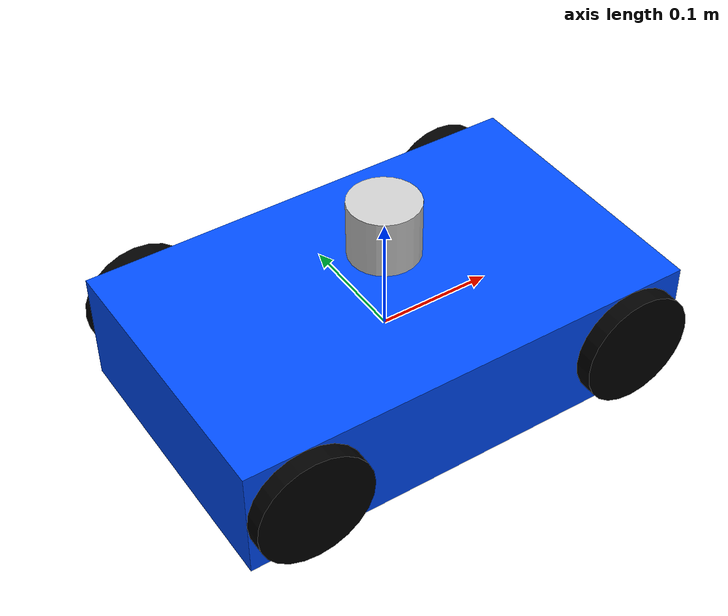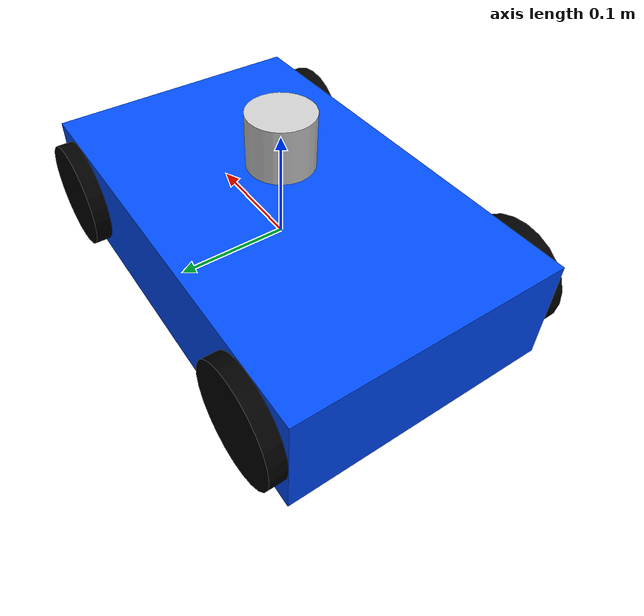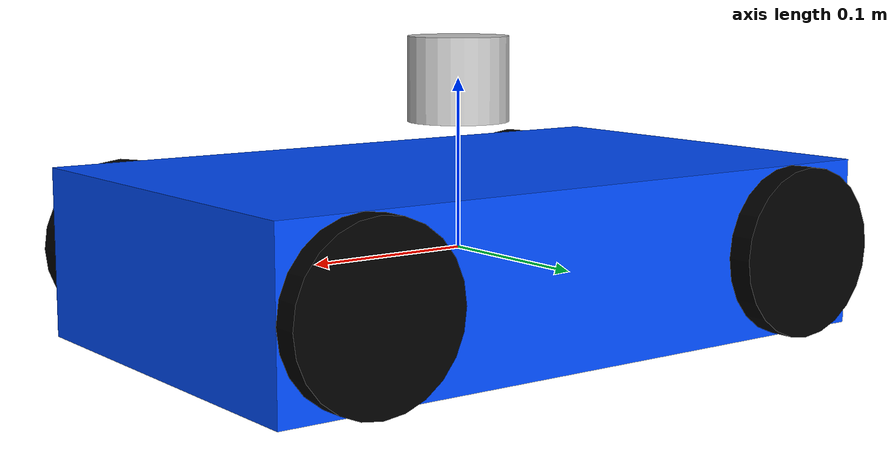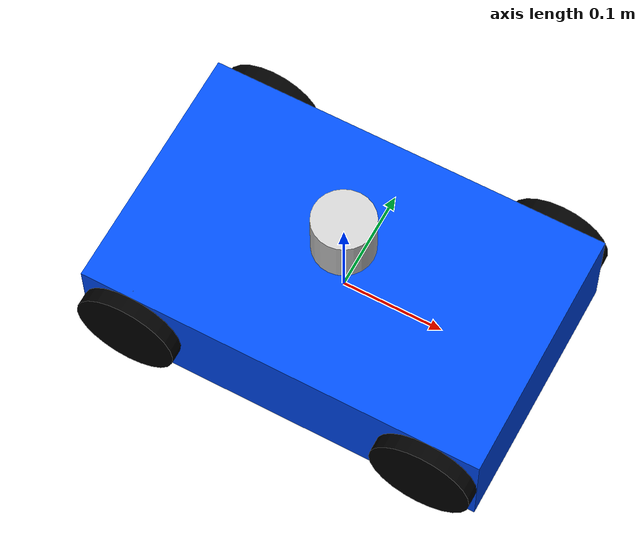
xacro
<?xml version="1.0"?>
<robot name="eclipse_ackermann_bot" xmlns:xacro="http://www.ros.org/wiki/xacro">

  <!-- ===== PARAMETERS ===== -->
  <xacro:property name="wheelbase" value="0.3"/>
  <xacro:property name="track_width" value="0.25"/>
  <xacro:property name="wheel_radius" value="0.05"/>
  <xacro:property name="wheel_thickness" value="0.03"/>
  <xacro:property name="max_steer_angle" value="0.6"/>

  <!-- ===== BASE LINK ===== -->
  <link name="base_link">
    <visual>
      <geometry><box size="0.4 0.25 0.1"/></geometry>
      <material name="blue"><color rgba="0.0 0.3 1.0 1.0"/></material>
    </visual>
    <collision>
      <geometry><box size="0.4 0.25 0.1"/></geometry>
    </collision>
    <inertial>
      <mass value="5.0"/>
      <inertia ixx="0.05" iyy="0.05" izz="0.05" ixy="0" ixz="0" iyz="0"/>
    </inertial>
  </link>

  <!-- ===== REAR WHEELS (Fixed, driven) ===== -->
  <xacro:macro name="rear_wheel" params="name y_offset">
    <link name="${name}">
      <visual>
        <geometry><cylinder length="${wheel_thickness}" radius="${wheel_radius}"/></geometry>
        <material name="black"><color rgba="0 0 0 1"/></material>
        <origin rpy="1.5708 0 0" xyz="0 0 0"/>
      </visual>
      <collision>
        <geometry><cylinder length="${wheel_thickness}" radius="${wheel_radius}"/></geometry>
        <origin rpy="1.5708 0 0" xyz="0 0 0"/>
      </collision>
      <inertial>
        <mass value="0.5"/>
        <inertia ixx="0.001" iyy="0.001" izz="0.0005" ixy="0" ixz="0" iyz="0"/>
      </inertial>
    </link>

    <joint name="${name}_joint" type="continuous">
      <parent link="base_link"/>
      <child link="${name}"/>
      <origin xyz="${-wheelbase/2} ${y_offset} 0" rpy="0 0 0"/>
      <axis xyz="0 1 0"/>
    </joint>

    <gazebo reference="${name}">
      <mu1>1.2</mu1>
      <mu2>1.2</mu2>
      <kp>1000000.0</kp>
      <kd>100.0</kd>
      <minDepth>0.001</minDepth>
      <maxVel>1.0</maxVel>
    </gazebo>
  </xacro:macro>

  <xacro:rear_wheel name="rear_left_wheel" y_offset="${track_width/2}"/>
  <xacro:rear_wheel name="rear_right_wheel" y_offset="${-track_width/2}"/>

  <!-- ===== FRONT WHEELS (Steerable) ===== -->
  <xacro:macro name="front_wheel" params="name y_offset">
    <!-- Steering link -->
    <link name="${name}_steering_link">
      <inertial>
        <mass value="0.01"/>
        <inertia ixx="0.00001" iyy="0.00001" izz="0.00001" ixy="0" ixz="0" iyz="0"/>
      </inertial>
    </link>

    <!-- Steering joint -->
    <joint name="${name}_steering_joint" type="revolute">
      <parent link="base_link"/>
      <child link="${name}_steering_link"/>
      <origin xyz="${wheelbase/2} ${y_offset} 0" rpy="0 0 0"/>
      <axis xyz="0 0 1"/>
      <limit lower="${-max_steer_angle}" upper="${max_steer_angle}" effort="100" velocity="10"/>
    </joint>

    <!-- Wheel link -->
    <link name="${name}">
      <visual>
        <geometry><cylinder length="${wheel_thickness}" radius="${wheel_radius}"/></geometry>
        <material name="black"><color rgba="0 0 0 1"/></material>
        <origin rpy="1.5708 0 0" xyz="0 0 0"/>
      </visual>
      <collision>
        <geometry><cylinder length="${wheel_thickness}" radius="${wheel_radius}"/></geometry>
        <origin rpy="1.5708 0 0" xyz="0 0 0"/>
      </collision>
      <inertial>
        <mass value="0.5"/>
        <inertia ixx="0.001" iyy="0.001" izz="0.0005" ixy="0" ixz="0" iyz="0"/>
      </inertial>
    </link>

    <!-- Wheel joint -->
    <joint name="${name}_joint" type="continuous">
      <parent link="${name}_steering_link"/>
      <child link="${name}"/>
      <origin xyz="0 0 0" rpy="0 0 0"/>
      <axis xyz="0 1 0"/>
    </joint>

    <gazebo reference="${name}">
      <mu1>1.2</mu1>
      <mu2>1.2</mu2>
      <kp>1000000.0</kp>
      <kd>100.0</kd>
      <minDepth>0.001</minDepth>
      <maxVel>1.0</maxVel>
    </gazebo>
  </xacro:macro>

  <xacro:front_wheel name="front_left_wheel" y_offset="${track_width/2}"/>
  <xacro:front_wheel name="front_right_wheel" y_offset="${-track_width/2}"/>

  <!-- ===== LIDAR LINK ===== -->
  <link name="lidar_link">
    <visual>
      <geometry><cylinder length="0.05" radius="0.03"/></geometry>
      <material name="gray"><color rgba="0.8 0.8 0.8 1.0"/></material>
    </visual>
    <collision>
      <geometry><cylinder length="0.05" radius="0.03"/></geometry>
    </collision>
    <inertial>
      <mass value="0.05"/>
      <inertia ixx="0.0001" iyy="0.0001" izz="0.0001" ixy="0" ixz="0" iyz="0"/>
    </inertial>
  </link>

  <joint name="lidar_joint" type="fixed">
    <parent link="base_link"/>
    <child link="lidar_link"/>
    <origin xyz="0 0 0.1" rpy="0 0 0"/>
  </joint>

  <!-- ===== IMU LINK ===== -->
  <link name="imu_link">
    <inertial>
      <mass value="0.01"/>
      <inertia ixx="0.00001" iyy="0.00001" izz="0.00001" ixy="0" ixz="0" iyz="0"/>
    </inertial>
  </link>

  <joint name="imu_joint" type="fixed">
    <parent link="base_link"/>
    <child link="imu_link"/>
    <origin xyz="0 0 0.05" rpy="0 0 0"/>
  </joint>

  <!-- ===== JOINT STATE PUBLISHER ===== -->
  <gazebo>
    <plugin filename="gz-sim-joint-state-publisher-system" name="gz::sim::systems::JointStatePublisher">
      <topic>joint_states</topic>
    </plugin>
  </gazebo>

  <!-- ===== VELOCITY CONTROL FOR REAR WHEELS ===== -->
  <gazebo>
    <plugin filename="gz-sim-joint-controller-system" name="gz::sim::systems::JointController">
      <joint_name>rear_left_wheel_joint</joint_name>
      <topic>rear_left_wheel/cmd_vel</topic>
      <p_gain>1.0</p_gain>
      <i_gain>0.1</i_gain>
      <d_gain>0.01</d_gain>
      <i_max>1.0</i_max>
      <i_min>-1.0</i_min>
      <cmd_max>100.0</cmd_max>
      <cmd_min>-100.0</cmd_min>
    </plugin>
  </gazebo>

  <gazebo>
    <plugin filename="gz-sim-joint-controller-system" name="gz::sim::systems::JointController">
      <joint_name>rear_right_wheel_joint</joint_name>
      <topic>rear_right_wheel/cmd_vel</topic>
      <p_gain>1.0</p_gain>
      <i_gain>0.1</i_gain>
      <d_gain>0.01</d_gain>
      <i_max>1.0</i_max>
      <i_min>-1.0</i_min>
      <cmd_max>100.0</cmd_max>
      <cmd_min>-100.0</cmd_min>
    </plugin>
  </gazebo>

  <!-- ===== POSITION CONTROL FOR STEERING ===== -->
  <gazebo>
    <plugin filename="gz-sim-joint-position-controller-system" name="gz::sim::systems::JointPositionController">
      <joint_name>front_left_wheel_steering_joint</joint_name>
      <topic>front_left_steering/cmd_pos</topic>
      <p_gain>10.0</p_gain>
      <i_gain>0.1</i_gain>
      <d_gain>0.5</d_gain>
      <i_max>1.0</i_max>
      <i_min>-1.0</i_min>
      <cmd_max>100.0</cmd_max>
      <cmd_min>-100.0</cmd_min>
    </plugin>
  </gazebo>

  <gazebo>
    <plugin filename="gz-sim-joint-position-controller-system" name="gz::sim::systems::JointPositionController">
      <joint_name>front_right_wheel_steering_joint</joint_name>
      <topic>front_right_steering/cmd_pos</topic>
      <p_gain>10.0</p_gain>
      <i_gain>0.1</i_gain>
      <d_gain>0.5</d_gain>
      <i_max>1.0</i_max>
      <i_min>-1.0</i_min>
      <cmd_max>100.0</cmd_max>
      <cmd_min>-100.0</cmd_min>
    </plugin>
  </gazebo>

  <!-- ===== POSE PUBLISHER (for odometry) ===== -->
  <gazebo>
    <plugin filename="libignition-gazebo-pose-publisher-system.so" name="ignition::gazebo::systems::PosePublisher">
      <publish_link_pose>true</publish_link_pose>
      <publish_sensor_pose>false</publish_sensor_pose>
      <publish_collision_pose>false</publish_collision_pose>
      <publish_visual_pose>false</publish_visual_pose>
      <publish_nested_model_pose>false</publish_nested_model_pose>
      <update_frequency>50</update_frequency>
    </plugin>
  </gazebo>

  <!-- ===== LIDAR SENSOR ===== -->
  <gazebo reference="lidar_link">
    <sensor name="lidar_sensor" type="gpu_lidar">
      <always_on>true</always_on>
      <update_rate>10</update_rate>
      <visualize>true</visualize>
      <pose>0 0 0 0 0 0</pose>
      <topic>scan</topic>
      <ray>
        <scan>
          <horizontal>
            <samples>720</samples>
            <resolution>1</resolution>
            <min_angle>-1.5708</min_angle>
            <max_angle>1.5708</max_angle>
          </horizontal>
        </scan>
        <range>
          <min>0.12</min>
          <max>5.0</max>
          <resolution>0.01</resolution>
        </range>
        <noise>
          <type>gaussian</type>
          <stddev>0.01</stddev>
        </noise>
      </ray>
      <plugin name="gz::sim::systems::Sensors" filename="gz-sim-sensors-system"/>
    </sensor>
  </gazebo>

  <!-- ===== IMU SENSOR ===== -->
  <gazebo reference="imu_link">
    <sensor name="imu_sensor" type="imu">
      <always_on>true</always_on>
      <update_rate>100</update_rate>
      <topic>imu</topic>
      <imu>
        <angular_velocity>
          <x>
            <noise type="gaussian">
              <mean>0.0</mean>
              <stddev>0.01</stddev>
            </noise>
          </x>
          <y>
            <noise type="gaussian">
              <mean>0.0</mean>
              <stddev>0.01</stddev>
            </noise>
          </y>
          <z>
            <noise type="gaussian">
              <mean>0.0</mean>
              <stddev>0.01</stddev>
            </noise>
          </z>
        </angular_velocity>
        <linear_acceleration>
          <x>
            <noise type="gaussian">
              <mean>0.0</mean>
              <stddev>0.1</stddev>
            </noise>
          </x>
          <y>
            <noise type="gaussian">
              <mean>0.0</mean>
              <stddev>0.1</stddev>
            </noise>
          </y>
          <z>
            <noise type="gaussian">
              <mean>0.0</mean>
              <stddev>0.1</stddev>
            </noise>
          </z>
        </linear_acceleration>
      </imu>
    </sensor>
  </gazebo>

</robot>
